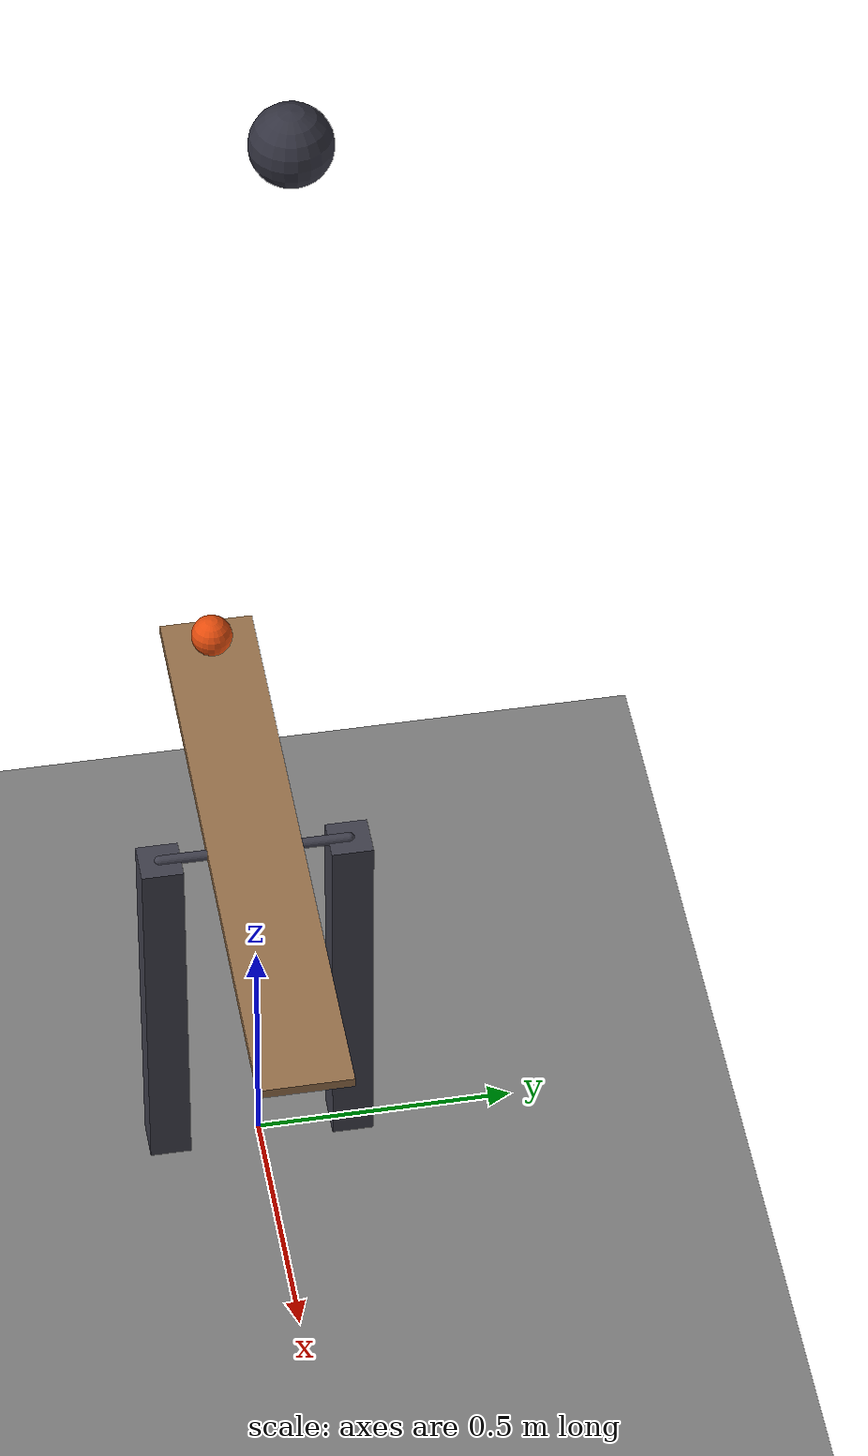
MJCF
<mujoco model="falling_weight_seesaw">
  <compiler angle="radian"/>
  <option timestep="0.002"/>
  <worldbody>
    <geom name="floor" type="plane" size="6 6 0.1" friction="0.8 0.005 0.002"/>
    <body name="left bearing">
      <geom name="left bearing" type="box" pos="0 0.18 0.4" size="0.04 0.04 0.4" rgba="0.25 0.25 0.3 1"/>
    </body>
    <body name="right bearing">
      <geom name="right bearing" type="box" pos="0 -0.18 0.4" size="0.04 0.04 0.4" rgba="0.25 0.25 0.3 1"/>
    </body>
    <body name="axle">
      <geom name="axle" type="capsule" size="0.01" fromto="0 0.18 0.8 0 -0.18 0.8" contype="0" conaffinity="0" rgba="0.25 0.25 0.3 1"/>
    </body>
    <body name="seesaw" pos="0 0 0.8">
      <joint name="seesaw_hinge" type="hinge" pos="0 0 0" axis="0 1 0" limited="true" range="0 0.610865" damping="0.002" armature="0.0001"/>
      <geom name="seesaw" type="box" pos="0 0 0" size="0.6 0.09 0.01" mass="0.4" friction="0.6 0.005 0.002" solref="0.01 1" rgba="0.6 0.45 0.3 1"/>
    </body>
    <body name="ball" pos="-0.52 0 0.85">
      <freejoint/>
      <geom name="ball" type="sphere" pos="0 0 0" size="0.04" mass="0.1" condim="6" friction="0.6 0.005 0.002" solref="0.01 1" rgba="0.9 0.3 0.05 1"/>
    </body>
    <body name="weight" pos="0.52 0 3">
      <freejoint/>
      <geom name="weight" type="sphere" pos="0 0 0" size="0.07" mass="1" condim="6" friction="0.6 0.005 0.002" solref="0.01 1" rgba="0.2 0.2 0.25 1"/>
    </body>
  </worldbody>
  <keyframe>
    <key name="start" qpos="0 -0.52 0 0.85 1 0 0 0 0.52 0 3 1 0 0 0" qvel="0 0 0 0 0 0 0 0 0 0 0 0 0"/>
  </keyframe>
</mujoco>
